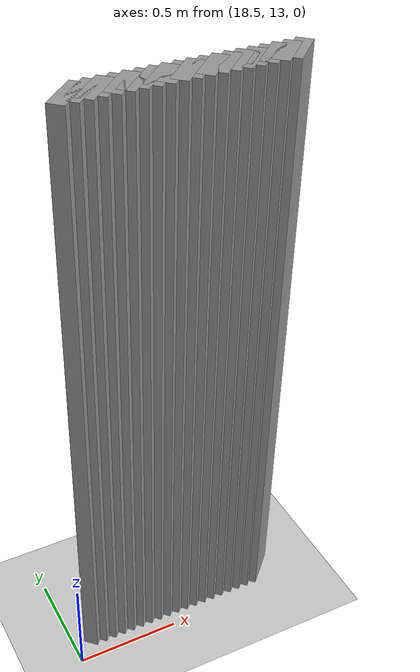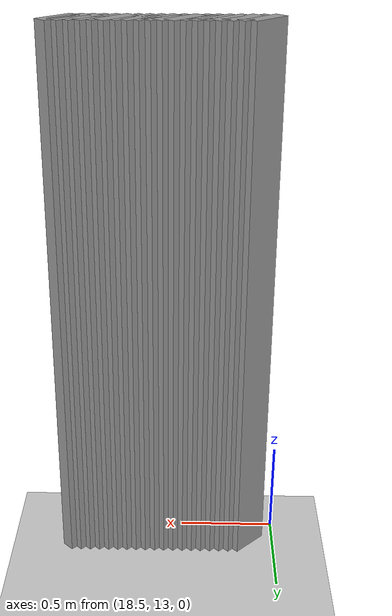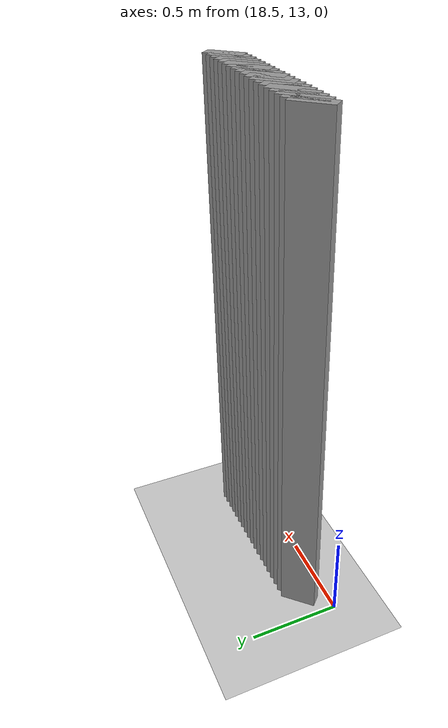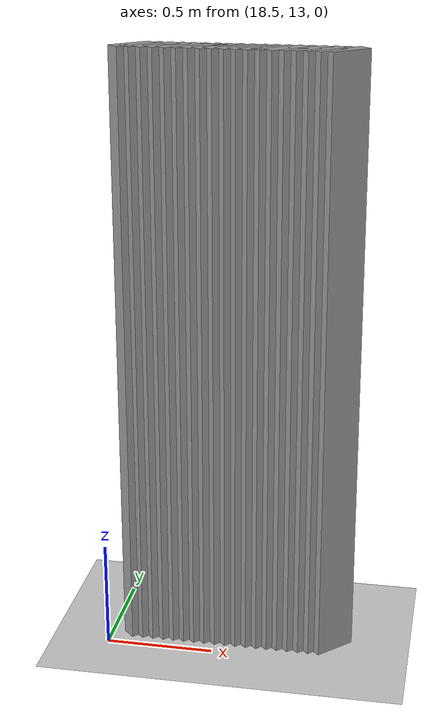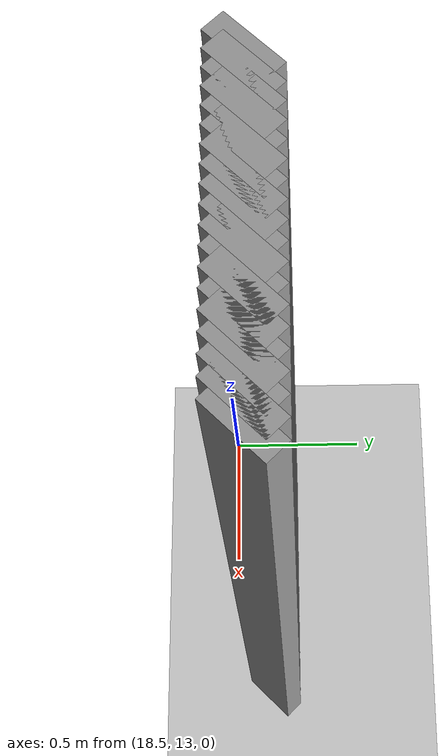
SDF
<sdf version="1.5">
 <world name="default">
  <include><uri>model://ground_plane</uri></include>
  <include><uri>model://sun</uri></include>
  <model name="grey_wall_2167">
   <static>1</static>
   <link name="link">
    <pose>18.65 13.15  1.4 0 0 -0.785398163397</pose>
    <collision name="collision"><geometry><box><size>0.0707106781187 .2  2.8</size></box></geometry></collision>
    <visual name="visual">
     <cast_shadows>0</cast_shadows>
     <geometry><box><size>0.0707106781187 .2  2.8</size></box></geometry>
     <material>
      <script>
       <uri>model://grey_wall/materials/scripts</uri>
       <uri>model://grey_wall/materials/textures</uri>
       <name>vrc/grey_wall</name>
      </script>
     </material>
    </visual>
   </link>
  </model>
  <model name="grey_wall_2168">
   <static>1</static>
   <link name="link">
    <pose>18.7 13.15  1.4 0 0 -0.785398163397</pose>
    <collision name="collision"><geometry><box><size>0.0707106781187 .2  2.8</size></box></geometry></collision>
    <visual name="visual">
     <cast_shadows>0</cast_shadows>
     <geometry><box><size>0.0707106781187 .2  2.8</size></box></geometry>
     <material>
      <script>
       <uri>model://grey_wall/materials/scripts</uri>
       <uri>model://grey_wall/materials/textures</uri>
       <name>vrc/grey_wall</name>
      </script>
     </material>
    </visual>
   </link>
  </model>
  <model name="grey_wall_2169">
   <static>1</static>
   <link name="link">
    <pose>18.75 13.15  1.4 0 0 -0.785398163397</pose>
    <collision name="collision"><geometry><box><size>0.0707106781187 .2  2.8</size></box></geometry></collision>
    <visual name="visual">
     <cast_shadows>0</cast_shadows>
     <geometry><box><size>0.0707106781187 .2  2.8</size></box></geometry>
     <material>
      <script>
       <uri>model://grey_wall/materials/scripts</uri>
       <uri>model://grey_wall/materials/textures</uri>
       <name>vrc/grey_wall</name>
      </script>
     </material>
    </visual>
   </link>
  </model>
  <model name="grey_wall_2170">
   <static>1</static>
   <link name="link">
    <pose>18.8 13.15  1.4 0 0 -0.785398163397</pose>
    <collision name="collision"><geometry><box><size>0.0707106781187 .2  2.8</size></box></geometry></collision>
    <visual name="visual">
     <cast_shadows>0</cast_shadows>
     <geometry><box><size>0.0707106781187 .2  2.8</size></box></geometry>
     <material>
      <script>
       <uri>model://grey_wall/materials/scripts</uri>
       <uri>model://grey_wall/materials/textures</uri>
       <name>vrc/grey_wall</name>
      </script>
     </material>
    </visual>
   </link>
  </model>
  <model name="grey_wall_2171">
   <static>1</static>
   <link name="link">
    <pose>18.85 13.15  1.4 0 0 -0.785398163397</pose>
    <collision name="collision"><geometry><box><size>0.0707106781187 .2  2.8</size></box></geometry></collision>
    <visual name="visual">
     <cast_shadows>0</cast_shadows>
     <geometry><box><size>0.0707106781187 .2  2.8</size></box></geometry>
     <material>
      <script>
       <uri>model://grey_wall/materials/scripts</uri>
       <uri>model://grey_wall/materials/textures</uri>
       <name>vrc/grey_wall</name>
      </script>
     </material>
    </visual>
   </link>
  </model>
  <model name="grey_wall_2172">
   <static>1</static>
   <link name="link">
    <pose>18.9 13.15  1.4 0 0 -0.785398163397</pose>
    <collision name="collision"><geometry><box><size>0.0707106781187 .2  2.8</size></box></geometry></collision>
    <visual name="visual">
     <cast_shadows>0</cast_shadows>
     <geometry><box><size>0.0707106781187 .2  2.8</size></box></geometry>
     <material>
      <script>
       <uri>model://grey_wall/materials/scripts</uri>
       <uri>model://grey_wall/materials/textures</uri>
       <name>vrc/grey_wall</name>
      </script>
     </material>
    </visual>
   </link>
  </model>
  <model name="grey_wall_2173">
   <static>1</static>
   <link name="link">
    <pose>18.95 13.15  1.4 0 0 -0.785398163397</pose>
    <collision name="collision"><geometry><box><size>0.0707106781187 .2  2.8</size></box></geometry></collision>
    <visual name="visual">
     <cast_shadows>0</cast_shadows>
     <geometry><box><size>0.0707106781187 .2  2.8</size></box></geometry>
     <material>
      <script>
       <uri>model://grey_wall/materials/scripts</uri>
       <uri>model://grey_wall/materials/textures</uri>
       <name>vrc/grey_wall</name>
      </script>
     </material>
    </visual>
   </link>
  </model>
  <model name="grey_wall_2174">
   <static>1</static>
   <link name="link">
    <pose>19.0 13.15  1.4 0 0 -0.785398163397</pose>
    <collision name="collision"><geometry><box><size>0.0707106781187 .2  2.8</size></box></geometry></collision>
    <visual name="visual">
     <cast_shadows>0</cast_shadows>
     <geometry><box><size>0.0707106781187 .2  2.8</size></box></geometry>
     <material>
      <script>
       <uri>model://grey_wall/materials/scripts</uri>
       <uri>model://grey_wall/materials/textures</uri>
       <name>vrc/grey_wall</name>
      </script>
     </material>
    </visual>
   </link>
  </model>
  <model name="grey_wall_2175">
   <static>1</static>
   <link name="link">
    <pose>19.05 13.15  1.4 0 0 -0.785398163397</pose>
    <collision name="collision"><geometry><box><size>0.0707106781187 .2  2.8</size></box></geometry></collision>
    <visual name="visual">
     <cast_shadows>0</cast_shadows>
     <geometry><box><size>0.0707106781187 .2  2.8</size></box></geometry>
     <material>
      <script>
       <uri>model://grey_wall/materials/scripts</uri>
       <uri>model://grey_wall/materials/textures</uri>
       <name>vrc/grey_wall</name>
      </script>
     </material>
    </visual>
   </link>
  </model>
  <model name="grey_wall_2176">
   <static>1</static>
   <link name="link">
    <pose>19.1 13.15  1.4 0 0 -0.785398163397</pose>
    <collision name="collision"><geometry><box><size>0.0707106781187 .2  2.8</size></box></geometry></collision>
    <visual name="visual">
     <cast_shadows>0</cast_shadows>
     <geometry><box><size>0.0707106781187 .2  2.8</size></box></geometry>
     <material>
      <script>
       <uri>model://grey_wall/materials/scripts</uri>
       <uri>model://grey_wall/materials/textures</uri>
       <name>vrc/grey_wall</name>
      </script>
     </material>
    </visual>
   </link>
  </model>
  <model name="grey_wall_2177">
   <static>1</static>
   <link name="link">
    <pose>19.15 13.15  1.4 0 0 -0.785398163397</pose>
    <collision name="collision"><geometry><box><size>0.0707106781187 .2  2.8</size></box></geometry></collision>
    <visual name="visual">
     <cast_shadows>0</cast_shadows>
     <geometry><box><size>0.0707106781187 .2  2.8</size></box></geometry>
     <material>
      <script>
       <uri>model://grey_wall/materials/scripts</uri>
       <uri>model://grey_wall/materials/textures</uri>
       <name>vrc/grey_wall</name>
      </script>
     </material>
    </visual>
   </link>
  </model>
  <model name="grey_wall_2178">
   <static>1</static>
   <link name="link">
    <pose>19.2 13.15  1.4 0 0 -0.785398163397</pose>
    <collision name="collision"><geometry><box><size>0.0707106781187 .2  2.8</size></box></geometry></collision>
    <visual name="visual">
     <cast_shadows>0</cast_shadows>
     <geometry><box><size>0.0707106781187 .2  2.8</size></box></geometry>
     <material>
      <script>
       <uri>model://grey_wall/materials/scripts</uri>
       <uri>model://grey_wall/materials/textures</uri>
       <name>vrc/grey_wall</name>
      </script>
     </material>
    </visual>
   </link>
  </model>
  <model name="grey_wall_2179">
   <static>1</static>
   <link name="link">
    <pose>19.25 13.15  1.4 0 0 -0.785398163397</pose>
    <collision name="collision"><geometry><box><size>0.0707106781187 .2  2.8</size></box></geometry></collision>
    <visual name="visual">
     <cast_shadows>0</cast_shadows>
     <geometry><box><size>0.0707106781187 .2  2.8</size></box></geometry>
     <material>
      <script>
       <uri>model://grey_wall/materials/scripts</uri>
       <uri>model://grey_wall/materials/textures</uri>
       <name>vrc/grey_wall</name>
      </script>
     </material>
    </visual>
   </link>
  </model>
  <model name="grey_wall_2180">
   <static>1</static>
   <link name="link">
    <pose>19.3 13.15  1.4 0 0 -0.785398163397</pose>
    <collision name="collision"><geometry><box><size>0.0707106781187 .2  2.8</size></box></geometry></collision>
    <visual name="visual">
     <cast_shadows>0</cast_shadows>
     <geometry><box><size>0.0707106781187 .2  2.8</size></box></geometry>
     <material>
      <script>
       <uri>model://grey_wall/materials/scripts</uri>
       <uri>model://grey_wall/materials/textures</uri>
       <name>vrc/grey_wall</name>
      </script>
     </material>
    </visual>
   </link>
  </model>
  <model name="grey_wall_2181">
   <static>1</static>
   <link name="link">
    <pose>19.35 13.15  1.4 0 0 -0.785398163397</pose>
    <collision name="collision"><geometry><box><size>0.0707106781187 .2  2.8</size></box></geometry></collision>
    <visual name="visual">
     <cast_shadows>0</cast_shadows>
     <geometry><box><size>0.0707106781187 .2  2.8</size></box></geometry>
     <material>
      <script>
       <uri>model://grey_wall/materials/scripts</uri>
       <uri>model://grey_wall/materials/textures</uri>
       <name>vrc/grey_wall</name>
      </script>
     </material>
    </visual>
   </link>
  </model>
  <model name="grey_wall_2182">
   <static>1</static>
   <link name="link">
    <pose>19.4 13.15  1.4 0 0 -0.785398163397</pose>
    <collision name="collision"><geometry><box><size>0.0707106781187 .2  2.8</size></box></geometry></collision>
    <visual name="visual">
     <cast_shadows>0</cast_shadows>
     <geometry><box><size>0.0707106781187 .2  2.8</size></box></geometry>
     <material>
      <script>
       <uri>model://grey_wall/materials/scripts</uri>
       <uri>model://grey_wall/materials/textures</uri>
       <name>vrc/grey_wall</name>
      </script>
     </material>
    </visual>
   </link>
  </model>
  <model name="grey_wall_2183">
   <static>1</static>
   <link name="link">
    <pose>19.45 13.15  1.4 0 0 -0.785398163397</pose>
    <collision name="collision"><geometry><box><size>0.0707106781187 .2  2.8</size></box></geometry></collision>
    <visual name="visual">
     <cast_shadows>0</cast_shadows>
     <geometry><box><size>0.0707106781187 .2  2.8</size></box></geometry>
     <material>
      <script>
       <uri>model://grey_wall/materials/scripts</uri>
       <uri>model://grey_wall/materials/textures</uri>
       <name>vrc/grey_wall</name>
      </script>
     </material>
    </visual>
   </link>
  </model>
  <model name="grey_wall_2184">
   <static>1</static>
   <link name="link">
    <pose>19.5 13.15  1.4 0 0 -0.785398163397</pose>
    <collision name="collision"><geometry><box><size>0.0707106781187 .2  2.8</size></box></geometry></collision>
    <visual name="visual">
     <cast_shadows>0</cast_shadows>
     <geometry><box><size>0.0707106781187 .2  2.8</size></box></geometry>
     <material>
      <script>
       <uri>model://grey_wall/materials/scripts</uri>
       <uri>model://grey_wall/materials/textures</uri>
       <name>vrc/grey_wall</name>
      </script>
     </material>
    </visual>
   </link>
  </model>
  <model name="grey_wall_2185">
   <static>1</static>
   <link name="link">
    <pose>19.55 13.15  1.4 0 0 -0.785398163397</pose>
    <collision name="collision"><geometry><box><size>0.0707106781187 .2  2.8</size></box></geometry></collision>
    <visual name="visual">
     <cast_shadows>0</cast_shadows>
     <geometry><box><size>0.0707106781187 .2  2.8</size></box></geometry>
     <material>
      <script>
       <uri>model://grey_wall/materials/scripts</uri>
       <uri>model://grey_wall/materials/textures</uri>
       <name>vrc/grey_wall</name>
      </script>
     </material>
    </visual>
   </link>
  </model>
 </world>
</sdf>
